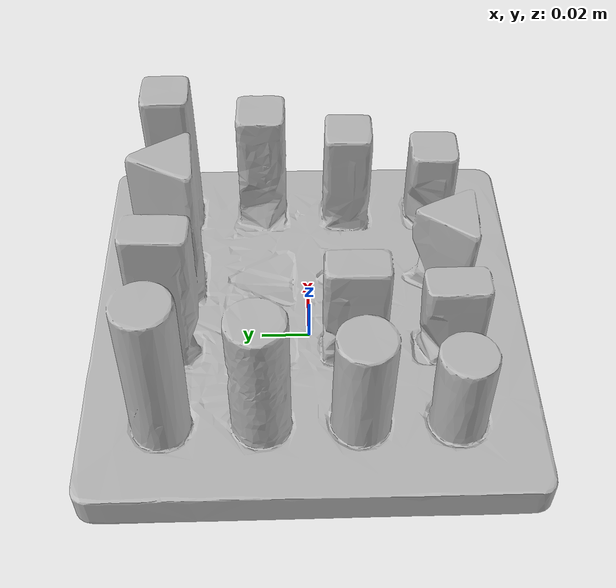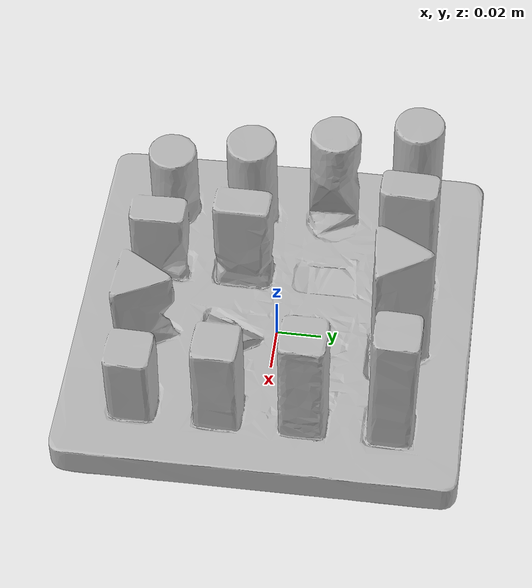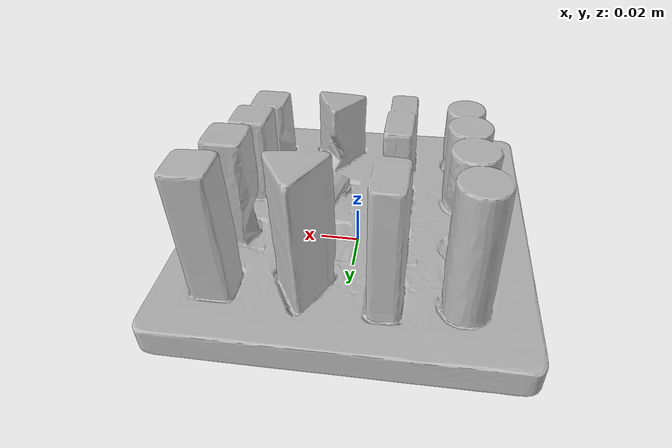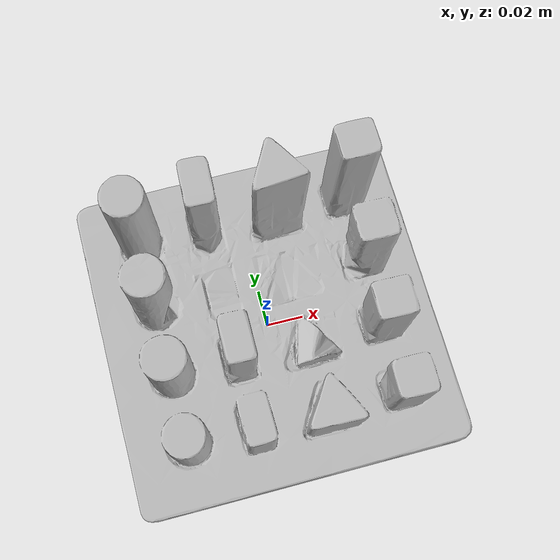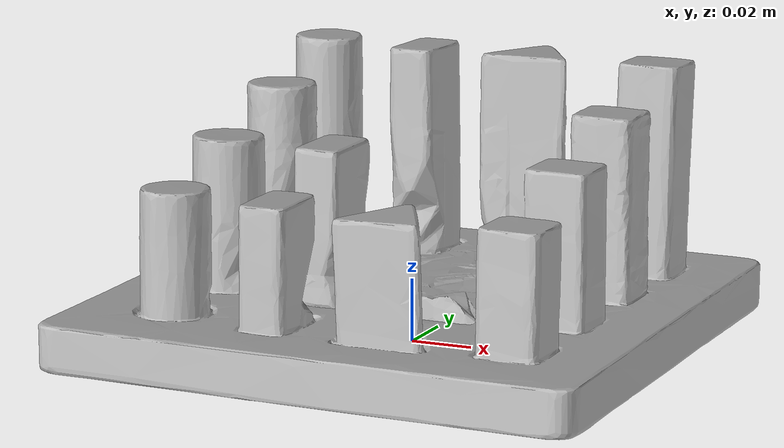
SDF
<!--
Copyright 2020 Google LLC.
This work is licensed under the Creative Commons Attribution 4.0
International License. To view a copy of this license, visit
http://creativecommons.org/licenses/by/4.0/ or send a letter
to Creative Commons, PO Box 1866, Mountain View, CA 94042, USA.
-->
<?xml version="1.0" ?>
<sdf version="1.6">
  <model name="GEOMETRIC_PEG_BOARD">
    <link name="link_0">
      <visual name="visual">
        <geometry>
          <mesh>
            <uri>meshes/model.obj</uri>
          </mesh>
        </geometry>
      </visual>
      <collision name="collision_0">
        <geometry>
          <mesh>
            <uri>meshes/model.obj</uri>
          </mesh>
        </geometry>
      </collision>
    </link>
  </model>
</sdf>
